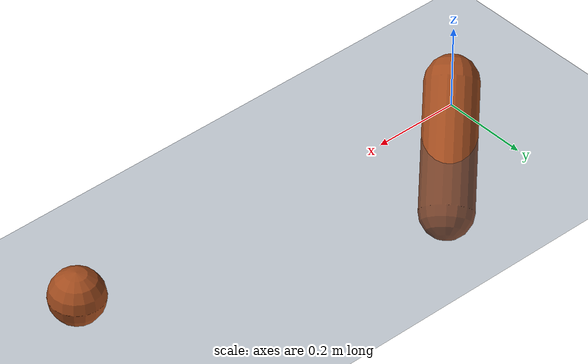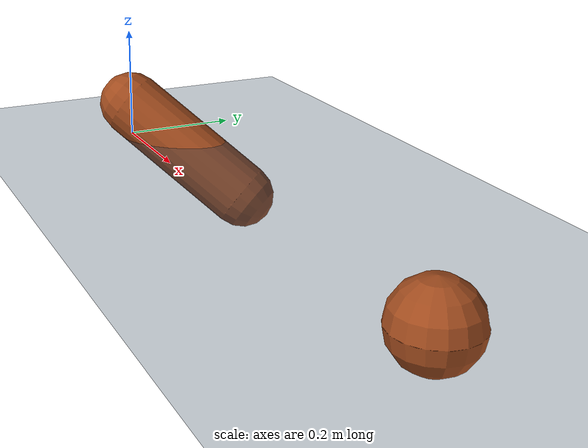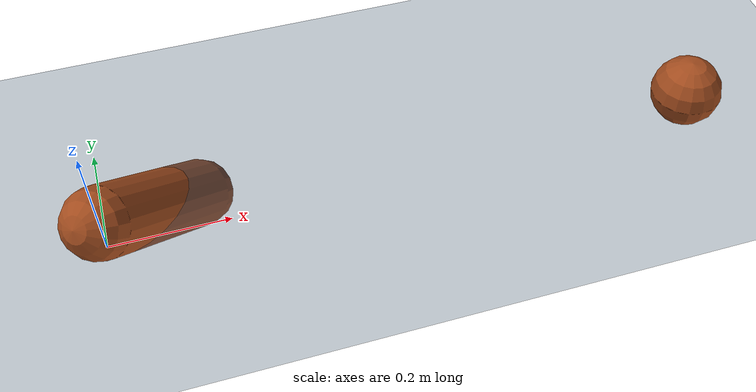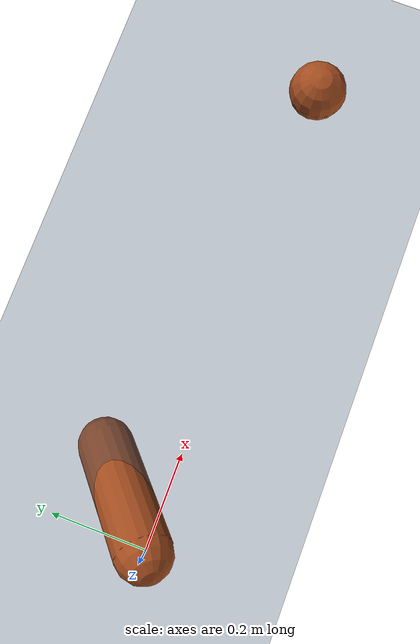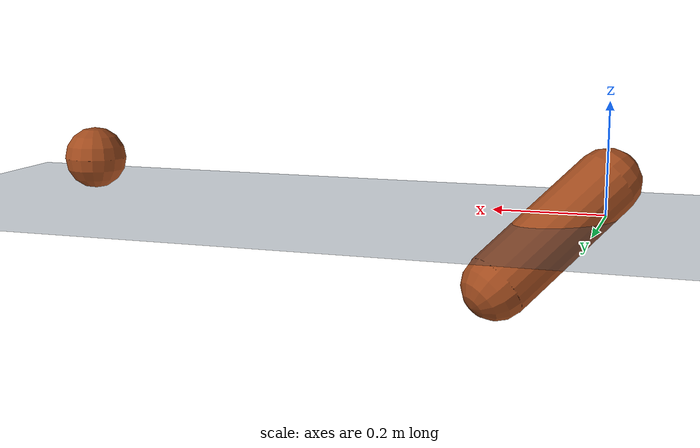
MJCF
<mujoco model="Snake">
    <option timestep="0.005"/>

    <visual>
      <map force="0.1" zfar="30"/>
      <rgba haze="0.15 0.25 0.35 1"/>
      <global offwidth="2560" offheight="1440" elevation="-20" azimuth="120"/>
    </visual>

    <statistic center="0 0 0.7"/>

    <asset>
      <texture type="skybox" builtin="gradient" rgb1=".3 .5 .7" rgb2="0 0 0" width="32" height="512"/>
      <texture name="body" type="cube" builtin="flat" mark="cross" width="128" height="128" rgb1="0.8 0.6 0.4" rgb2="0.8 0.6 0.4" markrgb="1 1 1" random="0.01"/>
      <material name="body" texture="body" texuniform="true" rgba="0.8 0.5 .3 1"/>
      <texture name="grid" type="2d" builtin="checker" width="512" height="512" rgb1=".1 .2 .3" rgb2=".2 .3 .4"/>
      <material name="grid" texture="grid" texrepeat="1 1" texuniform="true" reflectance=".2"/>
    </asset>

    <default>
      <motor ctrlrange="-1 1" ctrllimited="true"/>
      <default class="body">

        <!-- geoms -->

        <!-- geoms -->
        <geom type="capsule" condim="1" friction=".7" solimp=".9 .99 .003" solref=".015 1" material="body" group="1"/>
        <default class="head">
          <geom size=".06"/>
        </default>

        <!-- joints -->
        <joint type="hinge" damping=".2" stiffness="1" armature=".01" limited="true" solimplimit="0 .99 .01"/>
        <default class="body_joint">
            <joint range="-85 60"/>
        </default>

        <!-- joints -->
      </default>
    </default>

    <worldbody>
      <geom name="floor" size="0 0 .05" type="plane" material="grid" condim="3"/>
      <light name="spotlight" mode="targetbodycom" target="snake" diffuse=".8 .8 .8" specular="0.3 0.3 0.3" pos="0 -6 4" cutoff="30"/>

      <body name ="snake" pos="0 0 0.06">
        <joint name="neck" axis="0 0 1" class="body_joint"/>
        <geom name="head" fromto="0 0 0 .16 .16 -.16" class="head"/>
        <body name="segment_1" pos="1.0 0 0">
          <geom name="segment_1" zaxis="0 0 1" class="head"/>
        </body>
      </body>

    </worldbody>

    <actuator>

      <motor name="neck"  gear="20"  joint="neck"/>

    </actuator>

      <!--
      The values below are split into rows for readibility:
        torso position
        torso orientation
        spinal
        right leg
        left leg
        arms
      -->
  </mujoco>
